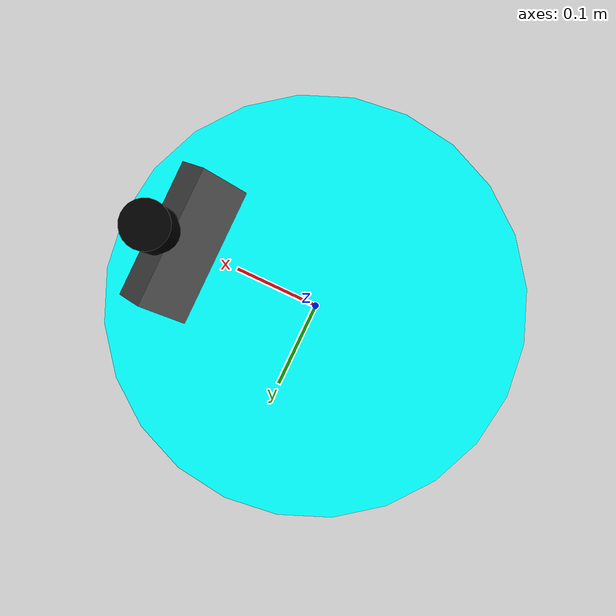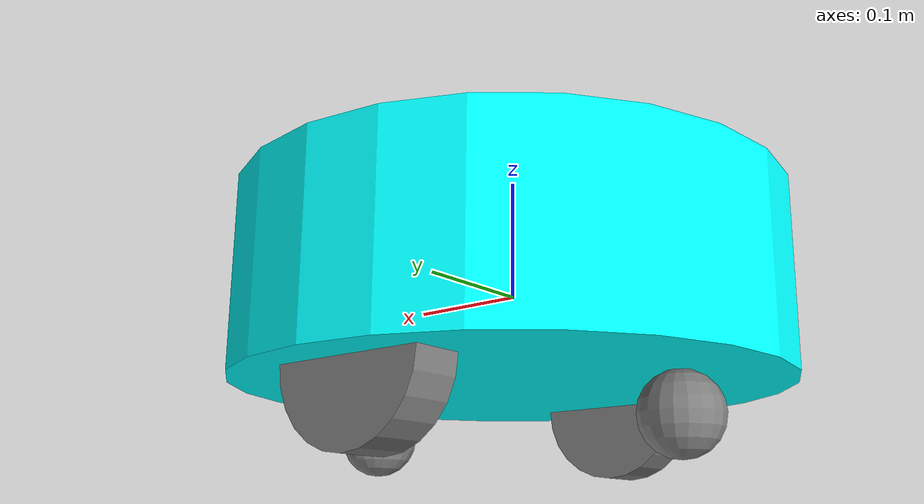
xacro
<?xml version="1.0"?>
<robot name="dr200_description" xmlns:xacro="http://ros.org/wiki/xacro">

  <!-- Base parameters -->
  <xacro:property name="base_radius" value="0.225"/>
  <xacro:property name="base_height" value="0.15"/>

  <!-- Wheel parameters -->
  <xacro:property name="wheel_radius" value="0.065"/>
  <xacro:property name="wheel_width" value="0.04"/>
  <xacro:property name="wheeltrack" value="0.329"/>
  <xacro:property name="wheel_xoff" value="0.00"/>
  <xacro:property name="wheel_zoff" value="${-base_height/2}"/>
  <xacro:property name="caster_xoff" value="0.15"/>

  <!-- IMU position -->
  <xacro:property name="imu_x" value="0.14"/>
  <xacro:property name="imu_y" value="0"/>
  <xacro:property name="imu_z" value="0"/>

  <!-- Laser position -->
  <xacro:property name="laser_x" value="0.175"/>
  <xacro:property name="laser_y" value="0"/>
  <xacro:property name="laser_z" value="0.15"/>

  <!-- Depth camera position -->
  <xacro:property name="camera_x" value="0.15"/>
  <xacro:property name="camera_y" value="0"/>
  <xacro:property name="camera_z" value="0.1"/>

  <!-- Inertia macro definition -->
  <xacro:macro name="box_inertia" params="m w h d">
    <inertial>
      <origin xyz="0 0 0" rpy="${pi/2} 0 ${pi/2}"/>
      <mass value="${m}"/>
      <inertia ixx="${(m/12) * (h*h + d*d)}" ixy="0.0" ixz="0.0" iyy="${(m/12) * (w*w + d*d)}" iyz="0.0" izz="${(m/12) * (w*w + h*h)}"/>
    </inertial>
  </xacro:macro>
  <xacro:macro name="cylinder_inertia" params="m r h">
    <inertial>
      <origin xyz="0 0 0" rpy="${pi/2} 0 0" />
      <mass value="${m}"/>
      <inertia ixx="${(m/12) * (3*r*r + h*h)}" ixy = "0" ixz = "0" iyy="${(m/12) * (3*r*r + h*h)}" iyz = "0" izz="${(m/2) * (r*r)}"/>
    </inertial>
  </xacro:macro>
  <xacro:macro name="sphere_inertia" params="m r">
    <inertial>
      <mass value="${m}"/>
      <inertia ixx="${(2/5) * m * (r*r)}" ixy="0.0" ixz="0.0" iyy="${(2/5) * m * (r*r)}" iyz="0.0" izz="${(2/5) * m * (r*r)}"/>
    </inertial>
  </xacro:macro>

  <!-- Robot Base -->
  <link name="base_link">
    <visual>
      <geometry>
        <cylinder radius="${base_radius}" length="${base_height}"/>
      </geometry>
      <material name="Cyan">
        <color rgba="0 1.0 1.0 1.0"/>
      </material>
    </visual>
  </link>

  <!-- Robot Footprint -->
  <link name="base_footprint"/>
  <joint name="base_joint" type="fixed">
    <parent link="base_link"/>
    <child link="base_footprint"/>
    <origin xyz="0.0 0.0 ${-((base_height/2)+wheel_radius)}" rpy="0 0 0"/>
  </joint>

  <!-- Wheels -->
  <xacro:macro name="wheel" params="prefix x_reflect y_reflect">
    <link name="${prefix}_link">
      <visual>
        <origin xyz="0 0 0" rpy="${pi/2} 0 0"/>
        <geometry>
          <cylinder radius="${wheel_radius}" length="${wheel_width}"/>
        </geometry>
        <material name="Gray">
          <color rgba="0.5 0.5 0.5 1.0"/>
        </material>
      </visual>
      <collision>
        <origin xyz="0 0 0" rpy="${pi/2} 0 0"/>
        <geometry>
          <cylinder radius="${wheel_radius}" length="${wheel_width}"/>
        </geometry>
      </collision>
      <xacro:cylinder_inertia m="0.5" r="${wheel_radius}" h="${wheel_width}"/>
    </link>
    <joint name="${prefix}_joint" type="continuous">
      <parent link="base_link"/>
      <child link="${prefix}_link"/>
      <origin xyz="${x_reflect*wheel_xoff} ${y_reflect*wheeltrack/2} ${wheel_zoff}" rpy="0 0 0"/>
      <axis xyz="0 1 0"/>
    </joint>
  </xacro:macro>
  <xacro:wheel prefix="left_wheel" x_reflect="-1" y_reflect="1" />
  <xacro:wheel prefix="right_wheel" x_reflect="-1" y_reflect="-1" />

  <!-- Caster wheel macro definition -->
  <xacro:macro name="caster_wheel" params="prefix x_pos">
    <link name="${prefix}_caster">
      <visual>
        <geometry>
          <sphere radius="${wheel_radius/2}"/>
        </geometry>
        <material name="Gray">
          <color rgba="0.5 0.5 0.5 1.0"/>
        </material>
      </visual>
      <collision>
        <geometry>
          <sphere radius="${wheel_radius/2}"/>
        </geometry>
      </collision>
      <xacro:sphere_inertia m="0.1" r="${wheel_radius/2}"/>
    </link>

    <joint name="${prefix}_caster_joint" type="fixed">
      <parent link="base_link"/>
      <child link="${prefix}_caster"/>
      <origin xyz="${x_pos} 0 ${-(base_height/2+wheel_radius/2)}" rpy="0 0 0"/>
    </joint>
  </xacro:macro>
  <!-- Front caster wheel -->
  <xacro:caster_wheel prefix="front" x_pos="${caster_xoff}"/>
  <!-- Rear caster wheel -->
  <xacro:caster_wheel prefix="rear" x_pos="${-caster_xoff}"/>

  <!-- IMU -->
  <link name="imu_base">
    <visual>
      <geometry>
        <box size="0.05 0.05 0.05"/>
      </geometry>
    </visual>
    <collision>
      <geometry>
        <box size="0.05 0.05 0.05"/>
      </geometry>
    </collision>
    <xacro:box_inertia m="0.01" w="0.05" d="0.05" h="0.05"/>
  </link>
  <joint name="imu_joint" type="fixed">
    <parent link="base_link"/>
    <child link="imu_base"/>
    <origin xyz="${imu_x} ${imu_y} ${imu_z}" rpy="0 0 0"/>
  </joint>

  <!-- Laser -->
  <link name="lidar_link">
    <visual>
      <geometry>
        <cylinder radius="0.025" length="0.05"/>
      </geometry>
      <material name="Black">
        <color rgba="0.0 0.0 0.0 1.0"/>
      </material>
    </visual>
    <collision>
      <geometry>
        <cylinder radius="0.025" length="0.05"/>
      </geometry>
    </collision>
    <xacro:cylinder_inertia m="0.1" r="0.025" h="0.05"/>
  </link>
  <joint name="lidar_joint" type="fixed">
    <parent link="base_link"/>
    <child link="lidar_link"/>
    <origin xyz="${laser_x} ${laser_y} ${laser_z}" rpy="0 0 0"/>
  </joint>

  <!-- Depth Camera -->
  <link name="camera_link">
    <visual>
      <geometry>
        <box size="0.06 0.15 0.04"/>
      </geometry>
      <material name="DarkGray">
        <color rgba="0.3 0.3 0.3 1.0"/>
      </material>
    </visual>
    <collision>
      <geometry>
        <box size="0.06 0.15 0.04"/>
      </geometry>
    </collision>
    <xacro:box_inertia m="0.2" w="0.06" d="0.15" h="0.04"/>
  </link>
  <joint name="camera_joint" type="fixed">
    <parent link="base_link"/>
    <child link="camera_link"/>
    <origin xyz="${camera_x} ${camera_y} ${camera_z}" rpy="0 ${-pi/4} 0"/>
  </joint>

</robot>
